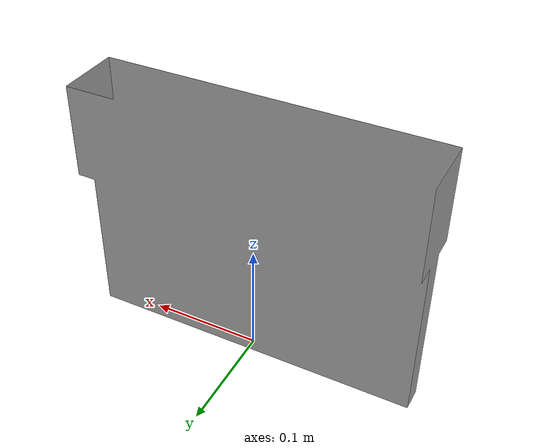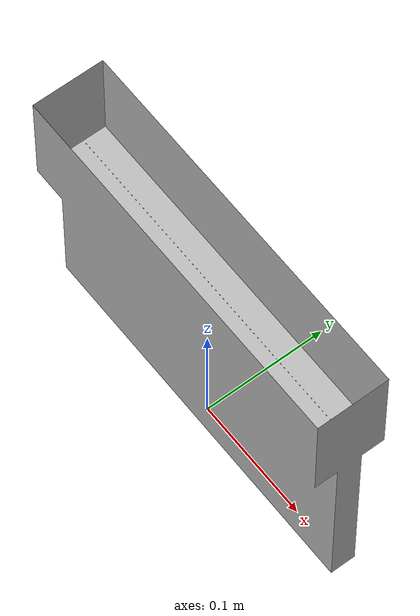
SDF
<?xml version='1.0' encoding='utf-8'?>
<sdf version="1.6">
  <model name="ExitSign">
   <static>true</static>
    <link name="body">
      <pose>0 0 0 0 0 0</pose>

      <visual name="visual">
        <geometry>
          <mesh>
            <uri>model://ExitSign/meshes/ExitSign.obj</uri>
          </mesh>
        </geometry>
      </visual>

      <collision name="collision">
        <geometry>
          <mesh>
            <uri>model://ExitSign/meshes/ExitSign.dae</uri>
          </mesh>
        </geometry>
      </collision>

    </link>
  </model>
</sdf>
